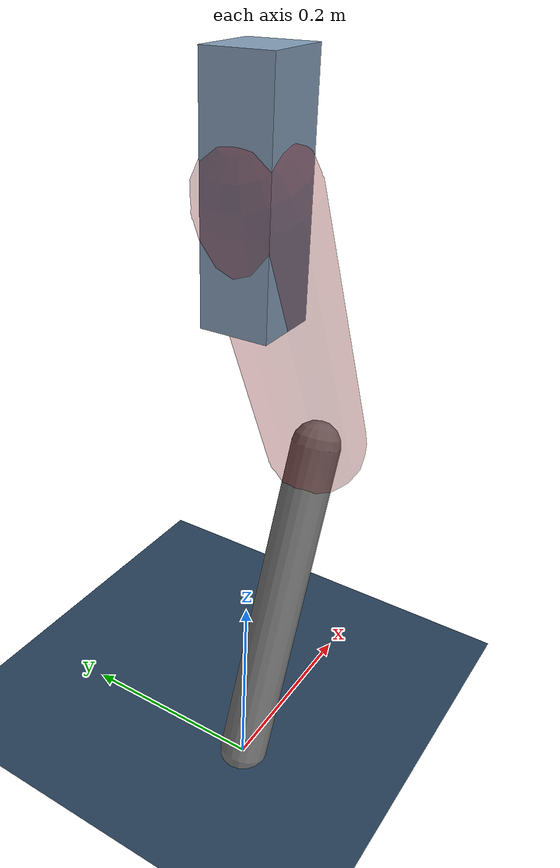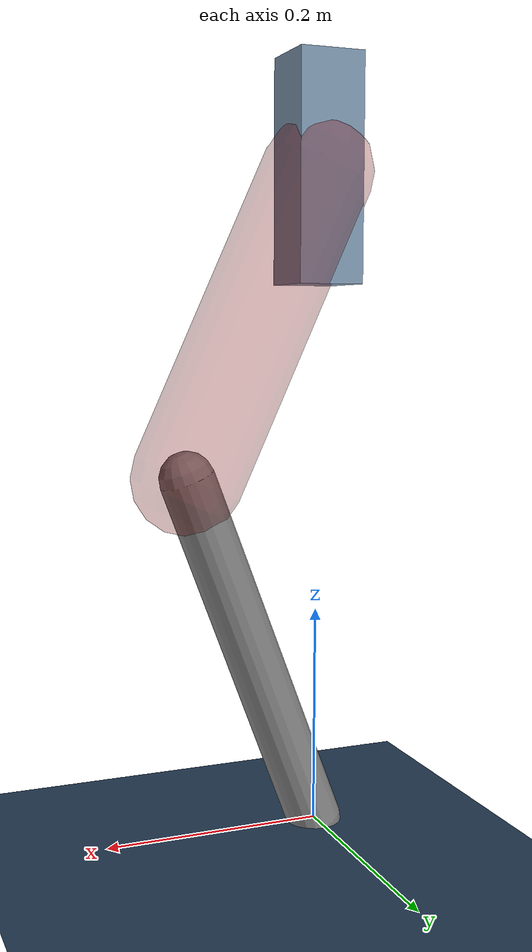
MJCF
<mujoco model="Hopper2D">
	<compiler inertiafromgeom="true" angle="radian" />
	<option timestep="0.001" integrator="implicit" cone="elliptic" solver="Newton" tolerance="1e-10" />

	<default>
		<geom contype="1" conaffinity="1" condim="3" friction="2 0.005 0.0001" solref="0.005 1" />
		<joint limited="true" damping="0.1" />
	</default>

	<asset>
		<texture name="skybox" type="skybox" builtin="gradient" rgb1=".4 .6 .8" rgb2="0 0 0" width="800" height="800" />
		<texture name="grid" type="2d" builtin="checker" rgb1=".1 .2 .3" rgb2=".2 .3 .4" width="300" height="300" mark="edge" markrgb=".2 .3 .4" />
		<material name="ground" texture="grid" texrepeat="1 1" texuniform="true" reflectance="0.1" />
		<material name="leg" rgba="0.5 0.6 0.7 1" />
	</asset>

	<worldbody>

		<geom name="floor" type="plane" size="5 5 0.25" material="ground" />

		<light directional="false" diffuse="0.8 0.8 0.8" specular="0.3 0.3 0.3" pos="0 0 2" dir="0 0 -1" />
		<light mode="targetbodycom" target="base" directional="false" diffuse="0.8 0.8 0.8" specular="0.3 0.3 0.3" pos="0 0 2" dir="0 0 -1" />

		<camera name="fixed" pos="0 -2 1" xyaxes="1 0 0 0 0 1" />
		<camera name="tracking" mode="trackcom" pos="0 -3 1" />

		<body name="root" pos="0 0 0.5965083729481144">
			<joint name="slide_x" type="slide" axis="1 0 0" range="-100 100" />
			<joint name="slide_z" type="slide" axis="0 0 1" range="0 10" />

			<body name="base" pos="0 0 0">
				<geom name="torso" type="box" size="0.03 0.03 0.1" mass="1.46" material="leg" />

				<body name="link1" pos="0 0 0" euler="0 1.1398795622776636 0">
					<joint type="hinge" axis="0 -1 0" pos="0 0 0" name="hinge1" limited="true" range="-3.14 3.14" stiffness="0" damping="0.1" />
					<geom name="thigh" type="capsule" fromto="0 0 0 0.2973626802989844 0 0" size="0.05" rgba="0.5 0 0 0.3" mass="0.9815792368072579" />

					<body name="link2" pos="0.2973626802989844 0 0" euler="0 0.7946107165097507 0">
						<joint type="hinge" axis="0 -1 0" pos="0 0 0" name="hinge2" limited="true" range="-3.14 3.14" stiffness="0" damping="0.1" />
						<geom name="shank" type="capsule" fromto="0 0 0 0.3491690826487779 0 0" size="0.025" mass="0.5232352661190224" />

					</body>
				</body>
			</body>
		</body>
	</worldbody>

	<actuator>
		<motor name="torque1" joint="hinge1" ctrlrange="-27.142252542973186 27.142252542973186" ctrllimited="true" gear="1" />
		<motor name="torque2" joint="hinge2" ctrlrange="-26.079084908251204 26.079084908251204" ctrllimited="true" gear="1" />
	</actuator>
</mujoco>
